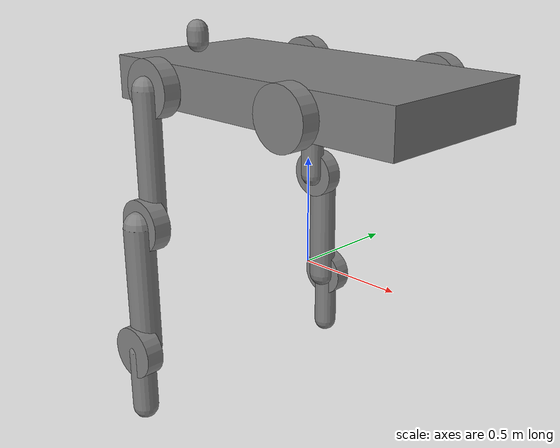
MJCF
<mujoco model="xmlrobot_9">
	<compiler inertiafromgeom="true" />
	<option gravity="0 0 -9.8" />
	<size nconmax="500" njmax="1000" />
	<custom />
	<default />
	<asset />
	<worldbody>
		<body name="root" pos="0 0 0.82" quat="0.707 0.0 0.0 0.707">
			<geom density="1000.0" friction="1.5 0.005 0.0001" name="geomroot" pos="-0.02 0 0.07" quat="1.0 0.0 0.0 0.0" size="0.15 0.15 0.02" type="box" />
			<body name="body1" pos="0 0 0" quat="1.0 0.0 0.0 0.0">
				<geom density="1000" friction="1.5 0.005 0.0001" name="geombody1" pos="-0.02 0 0" quat="1.0 0.0 0.0 0.0" size="0.4 0.8 0.1" type="box" />
				<joint axis="0 0 1" damping="1.0" limited="true" name="joint_joint1" pos="0 0 0" range="-5 5" stiffness="2.0" type="hinge" />
				<body name="hand_mount1" pos="-0.1175 0.6 0.2" quat="0.70711 0.0 0.70711 0.0">
					<geom density="1000" friction="1.5 0.005 0.0001" fromto="0 0 0 0.05 0 0" name="geomhand_mount1" quat="1.0 0.0 0.0 0.0" size="0.05" type="capsule" />
					<joint axis="1 0 0" damping="1.0" limited="true" name="joint_joint6" pos="0 0 0" range="-180 180" stiffness="2.0" type="hinge" />
				</body>
				<body name="limbmount4" pos="0.42 -0.4 0" quat="0.70711 0.0 0.70711 0.0">
					<geom density="1000" friction="1.5 0.005 0.0001" fromto="0 0 0 0.05 0 0" name="geomlimbmount4" quat="1.0 0.0 0.0 0.0" size="0.05" type="capsule" />
					<joint axis="0 1 0" damping="1.0" limited="true" name="joint_joint5" pos="0 0 0" range="-45 45" stiffness="2.0" type="hinge" />
					<body name="limbmount4_new_new" pos="0 0.05 0" quat="0.70711 0.0 -0.70711 0.0">
						<geom density="1000" euler="0 0 0" friction="1.5 0.005 0.0001" fromto="0 0 0 0.084 0 0" name="geomlimbmount4_new_new" pos="0 0 0" size="0.132" type="cylinder" />
						<joint axis="1 0 0" damping="1.0" limited="true" name="joint_limbmount4_new" pos="0 0 0" range="-45 45" stiffness="2.0" type="hinge" />
					</body>
				</body>
				<body name="limbmount3" pos="-0.45 -0.4 0" quat="0.70711 0.0 0.70711 0.0">
					<geom density="1000" friction="1.5 0.005 0.0001" fromto="0 0 0 0.05 0 0" name="geomlimbmount3" quat="-6.123233995736766e-17 1.0 0.0 0.0" size="0.05" type="capsule" />
					<joint axis="0 1 0" damping="1.0" limited="true" name="joint_joint4" pos="0 0 0" range="-45 45" stiffness="2.0" type="hinge" />
					<body name="motor8" pos="0 0.05 0" quat="-4.329780281177467e-17 0.7071067811865475 4.329780281177467e-17 -0.7071067811865477">
						<geom density="1000" euler="0 0 0" friction="1.5 0.005 0.0001" fromto="0 0 0 0.084 0 0" name="geommotor8" pos="0 0 0" size="0.132" type="cylinder" />
						<joint axis="1 0 0" damping="1.0" limited="true" name="joint_joint20" pos="0 0 0" range="-45 45" stiffness="2.0" type="hinge" />
					</body>
				</body>
				<body name="limbmount2" pos="-0.45 0.4 0" quat="0.70711 0.0 0.70711 0.0">
					<geom density="1000" friction="1.5 0.005 0.0001" fromto="0 0 0 0.05 0 0" name="geomlimbmount2" quat="-6.123233995736766e-17 1.0 0.0 0.0" size="0.05" type="capsule" />
					<joint axis="0 1 0" damping="1.0" limited="true" name="joint_joint3" pos="0 0 0" range="-45 45" stiffness="2.0" type="hinge" />
					<body name="limbmount2_new_new" pos="0 0.05 0" quat="-4.329780281177467e-17 0.7071067811865475 4.329780281177467e-17 -0.7071067811865477">
						<geom density="1000" euler="0 0 0" friction="1.5 0.005 0.0001" fromto="0 0 0 0.084 0 0" name="geomlimbmount2_new_new" pos="0 0 0" size="0.132" type="cylinder" />
						<joint axis="1 0 0" damping="1.0" limited="true" name="joint_limbmount2_new" pos="0 0 0" range="-45 45" stiffness="2.0" type="hinge" />
						<body name="limbmount2_new_new_new_new" pos="0.084 0 0" quat="0.70711 0.0 0.70711 0.0">
							<geom density="1000" friction="1.5 0.005 0.0001" fromto="0 0 0 0.6 0 0" name="geomlimbmount2_new_new_new_new" quat="1.0 0.0 0.0 0.0" size="0.06" type="capsule" />
							<joint axis="0 1 0" damping="1.0" limited="true" name="joint_limbmount2_new_new_new" pos="0 0 0" range="-45 45" stiffness="2.0" type="hinge" />
							<body name="limbmount2_new_new_new_new_new_new" pos="0.6 0 0" quat="0.70711 0.0 -0.70711 0.0">
								<geom density="1000" euler="0 0 0" friction="1.5 0.005 0.0001" fromto="0 0 0 0.084 0 0" name="geomlimbmount2_new_new_new_new_new_new" pos="0 0 0" size="0.122" type="cylinder" />
								<joint axis="1 0 0" damping="1.0" limited="true" name="joint_limbmount2_new_new_new_new_new" pos="0 0 0" range="-45 45" stiffness="2.0" type="hinge" />
								<body name="limbmount2_new_new_new_new_new_new_new_new" pos="0.084 0 0" quat="0.70711 0.0 0.70711 0.0">
									<geom density="1000" friction="1.5 0.005 0.0001" fromto="0 0 0 0.6 0 0" name="geomlimbmount2_new_new_new_new_new_new_new_new" quat="1.0 0.0 0.0 0.0" size="0.07" type="capsule" />
									<joint axis="0 1 0" damping="1.0" limited="true" name="joint_limbmount2_new_new_new_new_new_new_new" pos="0 0 0" range="-45 45" stiffness="2.0" type="hinge" />
									<body name="limbmount2_new_new_new_new_new_new_new_new_new_new" pos="0.6 0 0" quat="0.70711 0.0 -0.70711 0.0">
										<geom density="1000" euler="0 0 0" friction="1.5 0.005 0.0001" fromto="0 0 0 0.084 0 0" name="geomlimbmount2_new_new_new_new_new_new_new_new_new_new" pos="0 0 0" size="0.122" type="cylinder" />
										<joint axis="1 0 0" damping="1.0" limited="true" name="joint_limbmount2_new_new_new_new_new_new_new_new_new" pos="0 0 0" range="-45 45" stiffness="2.0" type="hinge" />
										<body name="limbmount2_new_new_new_new_new_new_new_new_new_new_new_new" pos="0.03 0 0" quat="0.70711 0.0 0.70711 0.0">
											<geom density="1000" friction="1.5 0.005 0.0001" fromto="0 0 0 0.3 0 0" name="geomlimbmount2_new_new_new_new_new_new_new_new_new_new_new_new" quat="1.0 0.0 0.0 0.0" size="0.06" type="capsule" />
											<joint axis="0 1 0" damping="1.0" limited="true" name="joint_limbmount2_new_new_new_new_new_new_new_new_new_new_new" pos="0 0 0" range="-45 45" stiffness="2.0" type="hinge" />
										</body>
									</body>
								</body>
							</body>
						</body>
					</body>
				</body>
				<body name="limbmount1" pos="0.42 0.4 0" quat="0.70711 0.0 0.70711 0.0">
					<geom density="1000" friction="1.5 0.005 0.0001" fromto="0 0 0 0.05 0 0" name="geomlimbmount1" quat="1.0 0.0 0.0 0.0" size="0.05" type="capsule" />
					<joint axis="0 1 0" damping="1.0" limited="true" name="joint_joint2" pos="0 0 0" range="-45 45" stiffness="2.0" type="hinge" />
					<body name="motor3" pos="0 0.05 0" quat="0.70711 0.0 -0.70711 0.0">
						<geom density="1000" euler="0 0 0" friction="1.5 0.005 0.0001" fromto="0 0 0 0.084 0 0" name="geommotor3" pos="0 0 0" size="0.132" type="cylinder" />
						<joint axis="1 0 0" damping="1.0" limited="true" name="joint_joint9" pos="0 0 0" range="-45 45" stiffness="2.0" type="hinge" />
						<body name="limblink2" pos="0.084 0 0" quat="0.70711 0.0 0.70711 0.0">
							<geom density="1000" friction="1.5 0.005 0.0001" fromto="0 0 0 0.6 0 0" name="geomlimblink2" quat="1.0 0.0 0.0 0.0" size="0.06" type="capsule" />
							<joint axis="0 1 0" damping="1.0" limited="true" name="joint_joint11" pos="0 0 0" range="-45 45" stiffness="2.0" type="hinge" />
							<body name="motor_link_end1" pos="0.6 0 0" quat="0.70711 0.0 -0.70711 0.0">
								<geom density="1000" euler="0 0 0" friction="1.5 0.005 0.0001" fromto="0 0 0 0.084 0 0" name="geommotor_link_end1" pos="0 0 0" size="0.122" type="cylinder" />
								<joint axis="1 0 0" damping="1.0" limited="true" name="joint_joint12" pos="0 0 0" range="-45 45" stiffness="2.0" type="hinge" />
								<body name="limblink5" pos="0.084 0 0" quat="0.70711 0.0 0.70711 0.0">
									<geom density="1000" friction="1.5 0.005 0.0001" fromto="0 0 0 0.6 0 0" name="geomlimblink5" quat="1.0 0.0 0.0 0.0" size="0.07" type="capsule" />
									<joint axis="0 1 0" damping="1.0" limited="true" name="joint_joint17" pos="0 0 0" range="-45 45" stiffness="2.0" type="hinge" />
									<body name="motor_link_end4" pos="0.6 0 0" quat="0.70711 0.0 -0.70711 0.0">
										<geom density="1000" euler="0 0 0" friction="1.5 0.005 0.0001" fromto="0 0 0 0.084 0 0" name="geommotor_link_end4" pos="0 0 0" size="0.122" type="cylinder" />
										<joint axis="1 0 0" damping="1.0" limited="true" name="joint_joint19" pos="0 0 0" range="-45 45" stiffness="2.0" type="hinge" />
										<body name="short_limblink3" pos="0.03 0 0" quat="0.70711 0.0 0.70711 0.0">
											<geom density="1000" friction="1.5 0.005 0.0001" fromto="0 0 0 0.3 0 0" name="geomshort_limblink3" quat="1.0 0.0 0.0 0.0" size="0.06" type="capsule" />
											<joint axis="0 1 0" damping="1.0" limited="true" name="joint_joint21" pos="0 0 0" range="-45 45" stiffness="2.0" type="hinge" />
										</body>
									</body>
								</body>
							</body>
						</body>
					</body>
				</body>
			</body>
		</body>
	</worldbody>
	<actuator>
		<motor ctrllimited="true" ctrlrange="-1 1" gear="22.5" joint="joint_joint1" />
		<motor ctrllimited="true" ctrlrange="-1 1" gear="22.5" joint="joint_joint6" />
		<motor ctrllimited="true" ctrlrange="-1 1" gear="22.5" joint="joint_joint5" />
		<motor ctrllimited="true" ctrlrange="-1 1" gear="22.5" joint="joint_limbmount4_new" />
		<motor ctrllimited="true" ctrlrange="-1 1" gear="22.5" joint="joint_joint4" />
		<motor ctrllimited="true" ctrlrange="-1 1" gear="22.5" joint="joint_joint20" />
		<motor ctrllimited="true" ctrlrange="-1 1" gear="22.5" joint="joint_joint3" />
		<motor ctrllimited="true" ctrlrange="-1 1" gear="22.5" joint="joint_limbmount2_new" />
		<motor ctrllimited="true" ctrlrange="-1 1" gear="22.5" joint="joint_limbmount2_new_new_new" />
		<motor ctrllimited="true" ctrlrange="-1 1" gear="22.5" joint="joint_limbmount2_new_new_new_new_new" />
		<motor ctrllimited="true" ctrlrange="-1 1" gear="22.5" joint="joint_limbmount2_new_new_new_new_new_new_new" />
		<motor ctrllimited="true" ctrlrange="-1 1" gear="22.5" joint="joint_limbmount2_new_new_new_new_new_new_new_new_new" />
		<motor ctrllimited="true" ctrlrange="-1 1" gear="22.5" joint="joint_limbmount2_new_new_new_new_new_new_new_new_new_new_new" />
		<motor ctrllimited="true" ctrlrange="-1 1" gear="22.5" joint="joint_joint2" />
		<motor ctrllimited="true" ctrlrange="-1 1" gear="22.5" joint="joint_joint9" />
		<motor ctrllimited="true" ctrlrange="-1 1" gear="22.5" joint="joint_joint11" />
		<motor ctrllimited="true" ctrlrange="-1 1" gear="22.5" joint="joint_joint12" />
		<motor ctrllimited="true" ctrlrange="-1 1" gear="22.5" joint="joint_joint17" />
		<motor ctrllimited="true" ctrlrange="-1 1" gear="22.5" joint="joint_joint19" />
		<motor ctrllimited="true" ctrlrange="-1 1" gear="22.5" joint="joint_joint21" />
	</actuator>
</mujoco>
